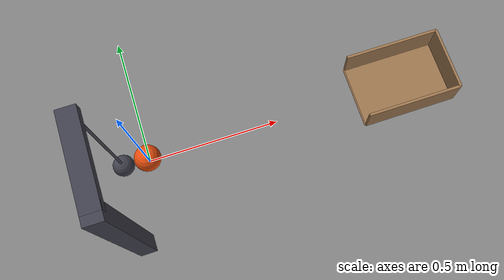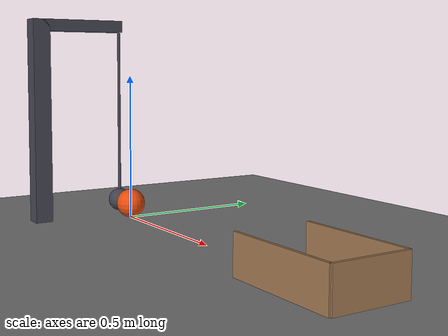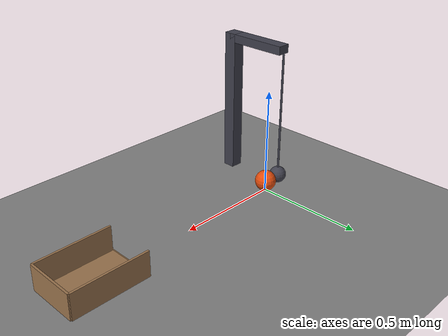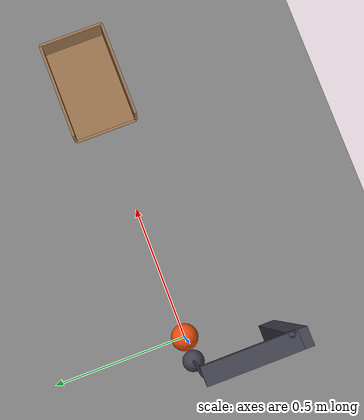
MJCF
<mujoco model="pendulum_rolls_a_ball_into_a_cup">
  <compiler angle="radian"/>
  <option timestep="0.002"/>
  <worldbody>
    <geom name="floor" type="plane" size="4 4 0.1" friction="0.6 0.001 0.0001"/>
    <body name="ball" pos="0 0 0.05">
      <freejoint/>
      <geom name="ball" type="sphere" pos="0 0 0" size="0.05" mass="0.15" condim="6" friction="0.6 0.001 0.0001" solref="0.01 1" rgba="0.9 0.3 0.05 1"/>
    </body>
    <geom name="pendulum_stand_arm" type="box" pos="-0.09 -0.15 0.675" size="0.03 0.15 0.02" solref="0.01 1" rgba="0.25 0.25 0.3 1"/>
    <geom name="pendulum_stand_post" type="box" pos="-0.09 -0.3 0.3475" size="0.03 0.03 0.3475" solref="0.01 1" rgba="0.25 0.25 0.3 1"/>
    <body name="pendulum" pos="-0.09 0 0.65">
      <joint name="pivot" type="hinge" pos="0 0 0" axis="0 1 0" damping="0.01"/>
      <geom name="pendulum_bob" type="sphere" pos="0 0 -0.6" size="0.04" mass="0.5" solref="0.01 1" rgba="0.25 0.25 0.3 1"/>
      <geom name="pendulum_rod" type="capsule" size="0.005" fromto="0 0 0 0 0 -0.56" mass="0.03" solref="0.01 1" rgba="0.25 0.25 0.3 1"/>
    </body>
    <body name="cup">
      <geom name="cup_base" type="box" pos="1 0 0.0015" size="0.18 0.12 0.0015" friction="0.8 0.01 0.015" solref="0.01 1" rgba="0.6 0.45 0.3 1"/>
      <geom name="cup_near_wall" type="box" pos="0.82 0 0.0015" size="0.005 0.12 0.0015" friction="0.8 0.01 0.015" solref="0.01 1" rgba="0.6 0.45 0.3 1"/>
      <geom name="cup_far_wall" type="box" pos="1.18 0 0.06" size="0.005 0.12 0.06" friction="0.8 0.01 0.015" solref="0.01 1" rgba="0.6 0.45 0.3 1"/>
      <geom name="cup_left_wall" type="box" pos="1 0.12 0.06" size="0.18 0.005 0.06" friction="0.8 0.01 0.015" solref="0.01 1" rgba="0.6 0.45 0.3 1"/>
      <geom name="cup_right_wall" type="box" pos="1 -0.12 0.06" size="0.18 0.005 0.06" friction="0.8 0.01 0.015" solref="0.01 1" rgba="0.6 0.45 0.3 1"/>
    </body>
  </worldbody>
  <keyframe>
    <key name="start" qpos="0 0 0.05 1 0 0 0 0.610865" qvel="0 0 0 0 0 0 0"/>
  </keyframe>
</mujoco>
